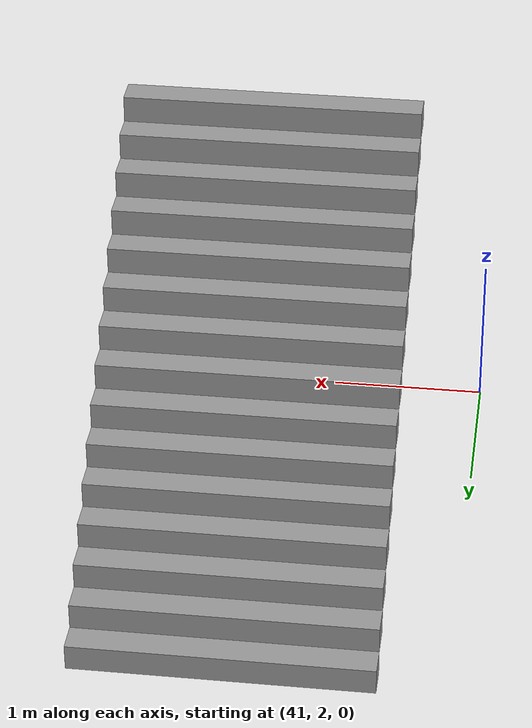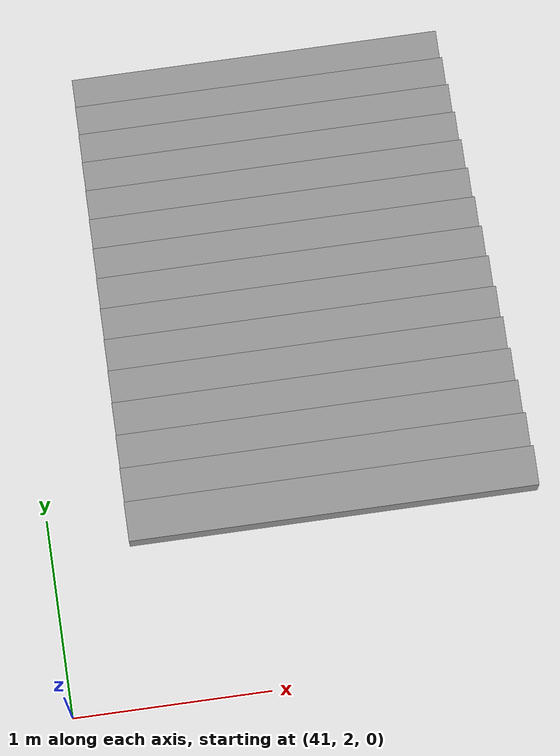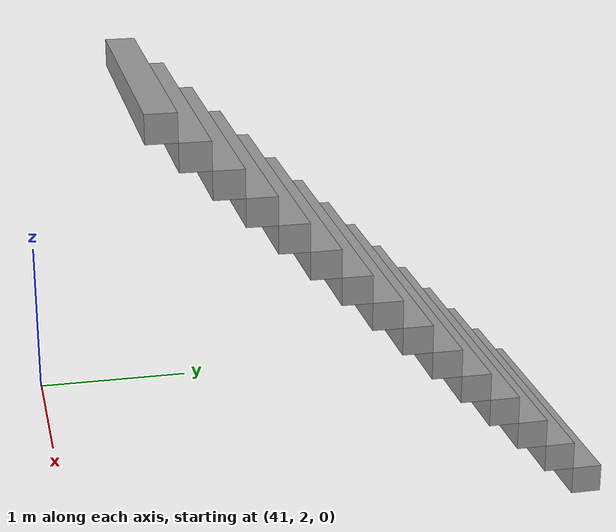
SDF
<sdf version="1.6">
 <model name="car_parking_underground_big_1">
  <pose>-9.36123 -7.37411 0 0 -0 0</pose>
  <link name="Stairs_1">
   <visual name="Stairs_1_Visual_0">
    <pose>51.7124 12.4748 0.083333 0 -0 0</pose>
    <geometry><box><size>1.85701 0.179697 0.166667</size></box></geometry>
    <material>
     <script><uri>file://media/materials/scripts/gazebo.material</uri><name>Gazebo/Grey</name></script>
     <ambient>1 1 1 1</ambient>
    </material>
    <meta><layer>0</layer></meta>
   </visual>
   <collision name="Stairs_1_Collision_0">
    <geometry><box><size>1.85701 0.179697 0.166667</size></box></geometry>
    <pose>51.7124 12.4748 0.083333 0 -0 0</pose>
   </collision>
   <visual name="Stairs_1_Visual_1">
    <pose>51.7124 12.2951 0.25 0 -0 0</pose>
    <geometry><box><size>1.85701 0.179697 0.166667</size></box></geometry>
    <material>
     <script><uri>file://media/materials/scripts/gazebo.material</uri><name>Gazebo/Grey</name></script>
     <ambient>1 1 1 1</ambient>
    </material>
    <meta><layer>0</layer></meta>
   </visual>
   <collision name="Stairs_1_Collision_1">
    <geometry><box><size>1.85701 0.179697 0.166667</size></box></geometry>
    <pose>51.7124 12.2951 0.25 0 -0 0</pose>
   </collision>
   <visual name="Stairs_1_Visual_2">
    <pose>51.7124 12.1154 0.416667 0 -0 0</pose>
    <geometry><box><size>1.85701 0.179697 0.166667</size></box></geometry>
    <material>
     <script><uri>file://media/materials/scripts/gazebo.material</uri><name>Gazebo/Grey</name></script>
     <ambient>1 1 1 1</ambient>
    </material>
    <meta><layer>0</layer></meta>
   </visual>
   <collision name="Stairs_1_Collision_2">
    <geometry><box><size>1.85701 0.179697 0.166667</size></box></geometry>
    <pose>51.7124 12.1154 0.416667 0 -0 0</pose>
   </collision>
   <visual name="Stairs_1_Visual_3">
    <pose>51.7124 11.9357 0.583333 0 -0 0</pose>
    <geometry><box><size>1.85701 0.179697 0.166667</size></box></geometry>
    <material>
     <script><uri>file://media/materials/scripts/gazebo.material</uri><name>Gazebo/Grey</name></script>
     <ambient>1 1 1 1</ambient>
    </material>
    <meta><layer>0</layer></meta>
   </visual>
   <collision name="Stairs_1_Collision_3">
    <geometry><box><size>1.85701 0.179697 0.166667</size></box></geometry>
    <pose>51.7124 11.9357 0.583333 0 -0 0</pose>
   </collision>
   <visual name="Stairs_1_Visual_4">
    <pose>51.7124 11.756 0.75 0 -0 0</pose>
    <geometry><box><size>1.85701 0.179697 0.166667</size></box></geometry>
    <material>
     <script><uri>file://media/materials/scripts/gazebo.material</uri><name>Gazebo/Grey</name></script>
     <ambient>1 1 1 1</ambient>
    </material>
    <meta><layer>0</layer></meta>
   </visual>
   <collision name="Stairs_1_Collision_4">
    <geometry><box><size>1.85701 0.179697 0.166667</size></box></geometry>
    <pose>51.7124 11.756 0.75 0 -0 0</pose>
   </collision>
   <visual name="Stairs_1_Visual_5">
    <pose>51.7124 11.5763 0.916667 0 -0 0</pose>
    <geometry><box><size>1.85701 0.179697 0.166667</size></box></geometry>
    <material>
     <script><uri>file://media/materials/scripts/gazebo.material</uri><name>Gazebo/Grey</name></script>
     <ambient>1 1 1 1</ambient>
    </material>
    <meta><layer>0</layer></meta>
   </visual>
   <collision name="Stairs_1_Collision_5">
    <geometry><box><size>1.85701 0.179697 0.166667</size></box></geometry>
    <pose>51.7124 11.5763 0.916667 0 -0 0</pose>
   </collision>
   <visual name="Stairs_1_Visual_6">
    <pose>51.7124 11.3966 1.08333 0 -0 0</pose>
    <geometry><box><size>1.85701 0.179697 0.166667</size></box></geometry>
    <material>
     <script><uri>file://media/materials/scripts/gazebo.material</uri><name>Gazebo/Grey</name></script>
     <ambient>1 1 1 1</ambient>
    </material>
    <meta><layer>0</layer></meta>
   </visual>
   <collision name="Stairs_1_Collision_6">
    <geometry><box><size>1.85701 0.179697 0.166667</size></box></geometry>
    <pose>51.7124 11.3966 1.08333 0 -0 0</pose>
   </collision>
   <visual name="Stairs_1_Visual_7">
    <pose>51.7124 11.2169 1.25 0 -0 0</pose>
    <geometry><box><size>1.85701 0.179697 0.166667</size></box></geometry>
    <material>
     <script><uri>file://media/materials/scripts/gazebo.material</uri><name>Gazebo/Grey</name></script>
     <ambient>1 1 1 1</ambient>
    </material>
    <meta><layer>0</layer></meta>
   </visual>
   <collision name="Stairs_1_Collision_7">
    <geometry><box><size>1.85701 0.179697 0.166667</size></box></geometry>
    <pose>51.7124 11.2169 1.25 0 -0 0</pose>
   </collision>
   <visual name="Stairs_1_Visual_8">
    <pose>51.7124 11.0372 1.41667 0 -0 0</pose>
    <geometry><box><size>1.85701 0.179697 0.166667</size></box></geometry>
    <material>
     <script><uri>file://media/materials/scripts/gazebo.material</uri><name>Gazebo/Grey</name></script>
     <ambient>1 1 1 1</ambient>
    </material>
    <meta><layer>0</layer></meta>
   </visual>
   <collision name="Stairs_1_Collision_8">
    <geometry><box><size>1.85701 0.179697 0.166667</size></box></geometry>
    <pose>51.7124 11.0372 1.41667 0 -0 0</pose>
   </collision>
   <visual name="Stairs_1_Visual_9">
    <pose>51.7124 10.8575 1.58333 0 -0 0</pose>
    <geometry><box><size>1.85701 0.179697 0.166667</size></box></geometry>
    <material>
     <script><uri>file://media/materials/scripts/gazebo.material</uri><name>Gazebo/Grey</name></script>
     <ambient>1 1 1 1</ambient>
    </material>
    <meta><layer>0</layer></meta>
   </visual>
   <collision name="Stairs_1_Collision_9">
    <geometry><box><size>1.85701 0.179697 0.166667</size></box></geometry>
    <pose>51.7124 10.8575 1.58333 0 -0 0</pose>
   </collision>
   <visual name="Stairs_1_Visual_10">
    <pose>51.7124 10.6778 1.75 0 -0 0</pose>
    <geometry><box><size>1.85701 0.179697 0.166667</size></box></geometry>
    <material>
     <script><uri>file://media/materials/scripts/gazebo.material</uri><name>Gazebo/Grey</name></script>
     <ambient>1 1 1 1</ambient>
    </material>
    <meta><layer>0</layer></meta>
   </visual>
   <collision name="Stairs_1_Collision_10">
    <geometry><box><size>1.85701 0.179697 0.166667</size></box></geometry>
    <pose>51.7124 10.6778 1.75 0 -0 0</pose>
   </collision>
   <visual name="Stairs_1_Visual_11">
    <pose>51.7124 10.4981 1.91667 0 -0 0</pose>
    <geometry><box><size>1.85701 0.179697 0.166667</size></box></geometry>
    <material>
     <script><uri>file://media/materials/scripts/gazebo.material</uri><name>Gazebo/Grey</name></script>
     <ambient>1 1 1 1</ambient>
    </material>
    <meta><layer>0</layer></meta>
   </visual>
   <collision name="Stairs_1_Collision_11">
    <geometry><box><size>1.85701 0.179697 0.166667</size></box></geometry>
    <pose>51.7124 10.4981 1.91667 0 -0 0</pose>
   </collision>
   <visual name="Stairs_1_Visual_12">
    <pose>51.7124 10.3184 2.08333 0 -0 0</pose>
    <geometry><box><size>1.85701 0.179697 0.166667</size></box></geometry>
    <material>
     <script><uri>file://media/materials/scripts/gazebo.material</uri><name>Gazebo/Grey</name></script>
     <ambient>1 1 1 1</ambient>
    </material>
    <meta><layer>0</layer></meta>
   </visual>
   <collision name="Stairs_1_Collision_12">
    <geometry><box><size>1.85701 0.179697 0.166667</size></box></geometry>
    <pose>51.7124 10.3184 2.08333 0 -0 0</pose>
   </collision>
   <visual name="Stairs_1_Visual_13">
    <pose>51.7124 10.1387 2.25 0 -0 0</pose>
    <geometry><box><size>1.85701 0.179697 0.166667</size></box></geometry>
    <material>
     <script><uri>file://media/materials/scripts/gazebo.material</uri><name>Gazebo/Grey</name></script>
     <ambient>1 1 1 1</ambient>
    </material>
    <meta><layer>0</layer></meta>
   </visual>
   <collision name="Stairs_1_Collision_13">
    <geometry><box><size>1.85701 0.179697 0.166667</size></box></geometry>
    <pose>51.7124 10.1387 2.25 0 -0 0</pose>
   </collision>
   <visual name="Stairs_1_Visual_14">
    <pose>51.7124 9.95903 2.41667 0 -0 0</pose>
    <geometry><box><size>1.85701 0.179697 0.166667</size></box></geometry>
    <material>
     <script><uri>file://media/materials/scripts/gazebo.material</uri><name>Gazebo/Grey</name></script>
     <ambient>1 1 1 1</ambient>
    </material>
    <meta><layer>0</layer></meta>
   </visual>
   <collision name="Stairs_1_Collision_14">
    <geometry><box><size>1.85701 0.179697 0.166667</size></box></geometry>
    <pose>51.7124 9.95903 2.41667 0 -0 0</pose>
   </collision>
  </link>
  <static>1</static>
 </model>
</sdf>
